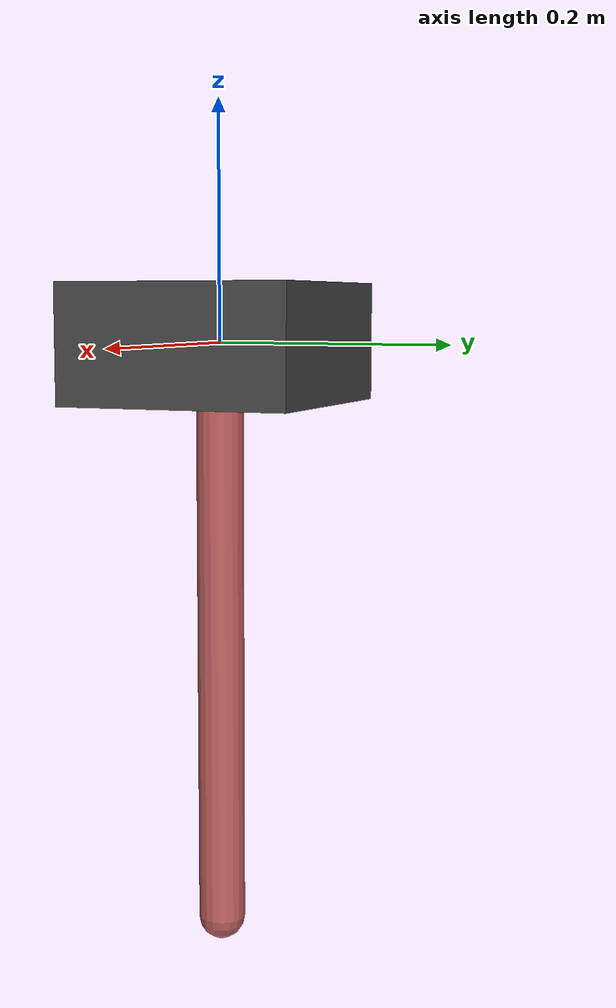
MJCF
<mujoco model="pendulum_arm">
  <option gravity="0 0 -9.81" timestep="0.01"/>

  <worldbody>
    <!-- Base cố định -->
    <body name="base" pos="0 0 0" euler="0 0 0">
      <geom type="box" size="0.1 0.1 0.05" rgba="0.3 0.3 0.3 1" mass="10"/>

      <!-- Thanh rod gắn vào base -->
      <body name="rod" pos="0 0 0">
        <!-- Khớp bản lề cho phép quay quanh trục y -->
        <joint name="hinge" type="hinge" axis="0 1 0" pos="0 0 0" range="-90 90" damping="0.1" limited="true"/>
        <!-- Hình dạng thanh rod -->
        <geom type="capsule" fromto="0 0 0 0 0 -0.5" size="0.02" rgba="0.8 0.4 0.4 1" density="1000"/>
      </body>
    </body>
  </worldbody>
</mujoco>
